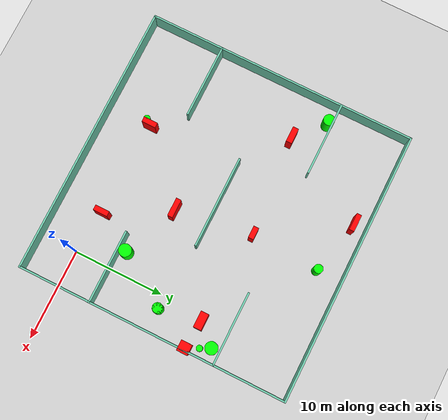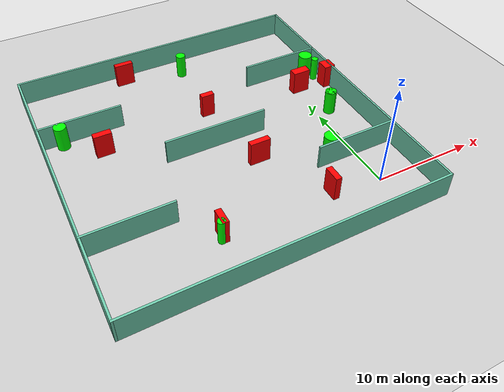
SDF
<sdf version="1.7">
 <world name="default">
  <light name="sun" type="directional">
   <pose>0 0 10 0 -0 0</pose>
   <diffuse>0.8 0.8 0.8 1</diffuse>
   <specular>0.2 0.2 0.2 1</specular>
   <attenuation>
    <range>1000</range>
    <constant>0.9</constant>
    <linear>0.01</linear>
    <quadratic>0.001</quadratic>
   </attenuation>
   <direction>-0.5 0.1 -0.9</direction>
   <spot><inner_angle>0</inner_angle><outer_angle>0</outer_angle><falloff>0</falloff></spot>
  </light>
  <model name="ground_plane">
   <static>1</static>
   <link name="link">
    <collision name="collision">
     <geometry><plane><normal>0 0 1</normal><size>100 100</size></plane></geometry>
     <surface>
      <contact><collide_bitmask>65535</collide_bitmask></contact>
      <friction><ode><mu>100</mu><mu2>50</mu2></ode></friction>
     </surface>
    </collision>
    <visual name="visual">
     <cast_shadows>0</cast_shadows>
     <geometry><plane><normal>0 0 1</normal><size>100 100</size></plane></geometry>
     <material>
      <script><uri>file://media/materials/scripts/gazebo.material</uri><name>Gazebo/Grey</name></script>
     </material>
    </visual>
   </link>
  </model>
  <gravity>0 0 -9.8</gravity>
  <magnetic_field>6e-06 2.3e-05 -4.2e-05</magnetic_field>
  <atmosphere type="adiabatic"/>
  <physics type="ode">
   <max_step_size>0.001</max_step_size>
   <real_time_factor>1</real_time_factor>
   <real_time_update_rate>1000</real_time_update_rate>
  </physics>
  <scene><ambient>0.4 0.4 0.4 1</ambient><background>0.7 0.7 0.7 1</background><shadows>1</shadows></scene>
  <spherical_coordinates>
   <surface_model>EARTH_WGS84</surface_model>
   <latitude_deg>0</latitude_deg>
   <longitude_deg>0</longitude_deg>
   <elevation>0</elevation>
   <heading_deg>0</heading_deg>
  </spherical_coordinates>
  <model name="my_base_walls">
   <link name="Wall_10">
    <collision name="Wall_10_Collision">
     <geometry><box><size>8.2 0.2 2.5</size></box></geometry>
     <pose>0 0 1.25 0 -0 0</pose>
    </collision>
    <visual name="Wall_10_Visual">
     <pose>0 0 1.25 0 -0 0</pose>
     <geometry><box><size>8.2 0.2 2.5</size></box></geometry>
     <material>
      <script><uri>file://media/materials/scripts/gazebo.material</uri><name>Gazebo/Grey</name></script>
      <ambient>0.435294 0.796078 0.67451 1</ambient>
     </material>
     <meta><layer>0</layer></meta>
    </visual>
    <pose>-11 -7 0 0 -0 0</pose>
   </link>
   <link name="Wall_12">
    <collision name="Wall_12_Collision">
     <geometry><box><size>8.2 0.2 2.5</size></box></geometry>
     <pose>0 0 1.25 0 -0 0</pose>
    </collision>
    <visual name="Wall_12_Visual">
     <pose>0 0 1.25 0 -0 0</pose>
     <geometry><box><size>8.2 0.2 2.5</size></box></geometry>
     <material>
      <script><uri>file://media/materials/scripts/gazebo.material</uri><name>Gazebo/Grey</name></script>
      <ambient>0.435294 0.796078 0.67451 1</ambient>
     </material>
     <meta><layer>0</layer></meta>
    </visual>
    <pose>-11 7 0 0 -0 0</pose>
   </link>
   <link name="Wall_14">
    <collision name="Wall_14_Collision">
     <geometry><box><size>8.2 0.2 2.5</size></box></geometry>
     <pose>0 0 1.25 0 -0 0</pose>
    </collision>
    <visual name="Wall_14_Visual">
     <pose>0 0 1.25 0 -0 0</pose>
     <geometry><box><size>8.2 0.2 2.5</size></box></geometry>
     <material>
      <script><uri>file://media/materials/scripts/gazebo.material</uri><name>Gazebo/Grey</name></script>
      <ambient>0.435294 0.796078 0.67451 1</ambient>
     </material>
     <meta><layer>0</layer></meta>
    </visual>
    <pose>11 7 0 0 -0 3.14159</pose>
   </link>
   <link name="Wall_16">
    <collision name="Wall_16_Collision">
     <geometry><box><size>10.2 0.2 2.5</size></box></geometry>
     <pose>0 0 1.25 0 -0 0</pose>
    </collision>
    <visual name="Wall_16_Visual">
     <pose>0 0 1.25 0 -0 0</pose>
     <geometry><box><size>10.2 0.2 2.5</size></box></geometry>
     <material>
      <script><uri>file://media/materials/scripts/gazebo.material</uri><name>Gazebo/Grey</name></script>
      <ambient>0.435294 0.796078 0.67451 1</ambient>
     </material>
     <meta><layer>0</layer></meta>
    </visual>
    <pose>0 0 0 0 -0 3.14159</pose>
   </link>
   <link name="Wall_2">
    <collision name="Wall_2_Collision">
     <geometry><box><size>30.2 0.2 2.5</size></box></geometry>
     <pose>0 0 1.25 0 -0 0</pose>
    </collision>
    <visual name="Wall_2_Visual">
     <pose>0 0 1.25 0 -0 0</pose>
     <geometry><box><size>30.2 0.2 2.5</size></box></geometry>
     <material>
      <script><uri>file://media/materials/scripts/gazebo.material</uri><name>Gazebo/Grey</name></script>
      <ambient>0.435294 0.796078 0.67451 1</ambient>
     </material>
     <meta><layer>0</layer></meta>
    </visual>
    <pose>0 -15 0 0 -0 3.14159</pose>
   </link>
   <link name="Wall_3">
    <collision name="Wall_3_Collision">
     <geometry><box><size>30.2 0.2 2.5</size></box></geometry>
     <pose>0 0 1.25 0 -0 0</pose>
    </collision>
    <visual name="Wall_3_Visual">
     <pose>0 0 1.25 0 -0 0</pose>
     <geometry><box><size>30.2 0.2 2.5</size></box></geometry>
     <material>
      <script><uri>file://media/materials/scripts/gazebo.material</uri><name>Gazebo/Grey</name></script>
      <ambient>0.435294 0.796078 0.67451 1</ambient>
     </material>
     <meta><layer>0</layer></meta>
    </visual>
    <pose>-15 0 0 0 -0 1.5708</pose>
   </link>
   <link name="Wall_4">
    <collision name="Wall_4_Collision">
     <geometry><box><size>30.2 0.2 2.5</size></box></geometry>
     <pose>0 0 1.25 0 -0 0</pose>
    </collision>
    <visual name="Wall_4_Visual">
     <pose>0 0 1.25 0 -0 0</pose>
     <geometry><box><size>30.2 0.2 2.5</size></box></geometry>
     <material>
      <script><uri>file://media/materials/scripts/gazebo.material</uri><name>Gazebo/Grey</name></script>
      <ambient>0.435294 0.796078 0.67451 1</ambient>
     </material>
     <meta><layer>0</layer></meta>
    </visual>
    <pose>0 15 0 0 -0 0</pose>
   </link>
   <link name="Wall_6">
    <collision name="Wall_6_Collision">
     <geometry><box><size>30.2 0.2 2.5</size></box></geometry>
     <pose>0 0 1.25 0 -0 0</pose>
    </collision>
    <visual name="Wall_6_Visual">
     <pose>0 0 1.25 0 -0 0</pose>
     <geometry><box><size>30.2 0.2 2.5</size></box></geometry>
     <material>
      <script><uri>file://media/materials/scripts/gazebo.material</uri><name>Gazebo/Grey</name></script>
      <ambient>0.435294 0.796078 0.67451 1</ambient>
     </material>
     <meta><layer>0</layer></meta>
    </visual>
    <pose>15 0 0 0 -0 1.5708</pose>
   </link>
   <link name="Wall_8">
    <collision name="Wall_8_Collision">
     <geometry><box><size>8.2 0.2 2.5</size></box></geometry>
     <pose>0 0 1.25 0 -0 0</pose>
    </collision>
    <visual name="Wall_8_Visual">
     <pose>0 0 1.25 0 -0 0</pose>
     <geometry><box><size>8.2 0.2 2.5</size></box></geometry>
     <material>
      <script><uri>file://media/materials/scripts/gazebo.material</uri><name>Gazebo/Grey</name></script>
      <ambient>0.435294 0.796078 0.67451 1</ambient>
     </material>
     <meta><layer>0</layer></meta>
    </visual>
    <pose>11 -7 0 0 -0 3.14159</pose>
   </link>
   <static>1</static>
   <pose>-11 11 0 0 -0 0</pose>
  </model>
  <model name="cylinder1">
   <static>1</static>
   <link name="link">
    <inertial>
     <mass>1</mass>
     <inertia><ixx>0.5</ixx><ixy>0</ixy><ixz>0</ixz><iyy>0.5</iyy><iyz>0</iyz><izz>1</izz></inertia>
    </inertial>
    <collision name="collision">
     <geometry><cylinder><radius>0.5557350408338877</radius><length>2.5</length></cylinder></geometry>
    </collision>
    <visual name="visual">
     <geometry><cylinder><radius>0.5557350408338877</radius><length>2.5</length></cylinder></geometry>
     <material>
      <ambient>0 1 0 1</ambient>
      <diffuse>0 1 0 1</diffuse>
      <specular>0.1 0.1 0.1 1</specular>
      <emissive>0 0 0 0</emissive>
     </material>
    </visual>
   </link>
   <pose>1.4200103140553963 10.435890360317323 1.25 0 0 0</pose>
  </model>
  <model name="cylinder2">
   <static>1</static>
   <link name="link">
    <inertial>
     <mass>1</mass>
     <inertia><ixx>0.5</ixx><ixy>0</ixy><ixz>0</ixz><iyy>0.5</iyy><iyz>0</iyz><izz>1</izz></inertia>
    </inertial>
    <collision name="collision">
     <geometry><cylinder><radius>0.6958995383054397</radius><length>2.5</length></cylinder></geometry>
    </collision>
    <visual name="visual">
     <geometry><cylinder><radius>0.6958995383054397</radius><length>2.5</length></cylinder></geometry>
     <material>
      <ambient>0 1 0 1</ambient>
      <diffuse>0 1 0 1</diffuse>
      <specular>0.1 0.1 0.1 1</specular>
      <emissive>0 0 0 0</emissive>
     </material>
    </visual>
   </link>
   <pose>2.5647795552149226 17.102923685264347 1.25 0 0 0</pose>
  </model>
  <model name="cylinder3">
   <static>1</static>
   <link name="link">
    <inertial>
     <mass>1</mass>
     <inertia><ixx>0.5</ixx><ixy>0</ixy><ixz>0</ixz><iyy>0.5</iyy><iyz>0</iyz><izz>1</izz></inertia>
    </inertial>
    <collision name="collision">
     <geometry><cylinder><radius>0.34258990772392683</radius><length>2.5</length></cylinder></geometry>
    </collision>
    <visual name="visual">
     <geometry><cylinder><radius>0.34258990772392683</radius><length>2.5</length></cylinder></geometry>
     <material>
      <ambient>0 1 0 1</ambient>
      <diffuse>0 1 0 1</diffuse>
      <specular>0.1 0.1 0.1 1</specular>
      <emissive>0 0 0 0</emissive>
     </material>
    </visual>
   </link>
   <pose>3.1107429202470875 16.02961023441516 1.25 0 0 0</pose>
  </model>
  <model name="cylinder4">
   <static>1</static>
   <link name="link">
    <inertial>
     <mass>1</mass>
     <inertia><ixx>0.5</ixx><ixy>0</ixy><ixz>0</ixz><iyy>0.5</iyy><iyz>0</iyz><izz>1</izz></inertia>
    </inertial>
    <collision name="collision">
     <geometry><cylinder><radius>0.35853674170237637</radius><length>2.5</length></cylinder></geometry>
    </collision>
    <visual name="visual">
     <geometry><cylinder><radius>0.35853674170237637</radius><length>2.5</length></cylinder></geometry>
     <material>
      <ambient>0 1 0 1</ambient>
      <diffuse>0 1 0 1</diffuse>
      <specular>0.1 0.1 0.1 1</specular>
      <emissive>0 0 0 0</emissive>
     </material>
    </visual>
   </link>
   <pose>-15.609333681445351 0.4020374709164707 1.25 0 0 0</pose>
  </model>
  <model name="cylinder5">
   <static>1</static>
   <link name="link">
    <inertial>
     <mass>1</mass>
     <inertia><ixx>0.5</ixx><ixy>0</ixy><ixz>0</ixz><iyy>0.5</iyy><iyz>0</iyz><izz>1</izz></inertia>
    </inertial>
    <collision name="collision">
     <geometry><cylinder><radius>0.48634277351430066</radius><length>2.5</length></cylinder></geometry>
    </collision>
    <visual name="visual">
     <geometry><cylinder><radius>0.48634277351430066</radius><length>2.5</length></cylinder></geometry>
     <material>
      <ambient>0 1 0 1</ambient>
      <diffuse>0 1 0 1</diffuse>
      <specular>0.1 0.1 0.1 1</specular>
      <emissive>0 0 0 0</emissive>
     </material>
    </visual>
   </link>
   <pose>-9.423597022613103 23.244316449177806 1.25 0 0 0</pose>
  </model>
  <model name="cylinder6">
   <static>1</static>
   <link name="link">
    <inertial>
     <mass>1</mass>
     <inertia><ixx>0.5</ixx><ixy>0</ixy><ixz>0</ixz><iyy>0.5</iyy><iyz>0</iyz><izz>1</izz></inertia>
    </inertial>
    <collision name="collision">
     <geometry><cylinder><radius>0.610077006276796</radius><length>2.5</length></cylinder></geometry>
    </collision>
    <visual name="visual">
     <geometry><cylinder><radius>0.610077006276796</radius><length>2.5</length></cylinder></geometry>
     <material>
      <ambient>0 1 0 1</ambient>
      <diffuse>0 1 0 1</diffuse>
      <specular>0.1 0.1 0.1 1</specular>
      <emissive>0 0 0 0</emissive>
     </material>
    </visual>
   </link>
   <pose>-24.002255954840273 17.515594844428005 1.25 0 0 0</pose>
  </model>
  <model name="cylinder7">
   <static>1</static>
   <link name="link">
    <inertial>
     <mass>1</mass>
     <inertia><ixx>0.5</ixx><ixy>0</ixy><ixz>0</ixz><iyy>0.5</iyy><iyz>0</iyz><izz>1</izz></inertia>
    </inertial>
    <collision name="collision">
     <geometry><cylinder><radius>0.5190464480565334</radius><length>2.5</length></cylinder></geometry>
    </collision>
    <visual name="visual">
     <geometry><cylinder><radius>0.5190464480565334</radius><length>2.5</length></cylinder></geometry>
     <material>
      <ambient>0 1 0 1</ambient>
      <diffuse>0 1 0 1</diffuse>
      <specular>0.1 0.1 0.1 1</specular>
      <emissive>0 0 0 0</emissive>
     </material>
    </visual>
   </link>
   <pose>1.493291448484566 10.42672531775889 1.25 0 0 0</pose>
  </model>
  <model name="cylinder8">
   <static>1</static>
   <link name="link">
    <inertial>
     <mass>1</mass>
     <inertia><ixx>0.5</ixx><ixy>0</ixy><ixz>0</ixz><iyy>0.5</iyy><iyz>0</iyz><izz>1</izz></inertia>
    </inertial>
    <collision name="collision">
     <geometry><cylinder><radius>0.6990519343869346</radius><length>2.5</length></cylinder></geometry>
    </collision>
    <visual name="visual">
     <geometry><cylinder><radius>0.6990519343869346</radius><length>2.5</length></cylinder></geometry>
     <material>
      <ambient>0 1 0 1</ambient>
      <diffuse>0 1 0 1</diffuse>
      <specular>0.1 0.1 0.1 1</specular>
      <emissive>0 0 0 0</emissive>
     </material>
    </visual>
   </link>
   <pose>-2.284853163428682 4.812786543202604 1.25 0 0 0</pose>
  </model>
  <model name="box1">
   <static>1</static>
   <link name="link">
    <inertial>
     <mass>1</mass>
     <inertia><ixx>0.083</ixx><ixy>0</ixy><ixz>0</ixz><iyy>0.083</iyy><iyz>0</iyz><izz>0.083</izz></inertia>
    </inertial>
    <collision name="collision">
     <geometry><box><size>2.0185422227915852 0.5677051155712713 2.5</size></box></geometry>
    </collision>
    <visual name="visual">
     <geometry><box><size>2.0185422227915852 0.5677051155712713 2.5</size></box></geometry>
     <material>
      <ambient>1 0 0 1</ambient>
      <diffuse>1 0 0 1</diffuse>
      <specular>0.1 0.1 0.1 1</specular>
      <emissive>0 0 0 0</emissive>
     </material>
    </visual>
    <sensor name="my_contact" type="contact">
     <contact><collision>box_collision</collision><topic>__default_topic__</topic></contact>
    </sensor>
   </link>
   <pose>-8.448079217330744 7.2944681966204605 1.25 0 0 0</pose>
  </model>
  <model name="box2">
   <static>1</static>
   <link name="link">
    <inertial>
     <mass>1</mass>
     <inertia><ixx>0.083</ixx><ixy>0</ixy><ixz>0</ixz><iyy>0.083</iyy><iyz>0</iyz><izz>0.083</izz></inertia>
    </inertial>
    <collision name="collision">
     <geometry><box><size>1.172146536693 1.2447370813859169 2.5</size></box></geometry>
    </collision>
    <visual name="visual">
     <geometry><box><size>1.172146536693 1.2447370813859169 2.5</size></box></geometry>
     <material>
      <ambient>1 0 0 1</ambient>
      <diffuse>1 0 0 1</diffuse>
      <specular>0.1 0.1 0.1 1</specular>
      <emissive>0 0 0 0</emissive>
     </material>
    </visual>
    <sensor name="my_contact" type="contact">
     <contact><collision>box_collision</collision><topic>__default_topic__</topic></contact>
    </sensor>
   </link>
   <pose>3.732210130196261 14.655679255117818 1.25 0 0 0</pose>
  </model>
  <model name="box3">
   <static>1</static>
   <link name="link">
    <inertial>
     <mass>1</mass>
     <inertia><ixx>0.083</ixx><ixy>0</ixy><ixz>0</ixz><iyy>0.083</iyy><iyz>0</iyz><izz>0.083</izz></inertia>
    </inertial>
    <collision name="collision">
     <geometry><box><size>0.573211473868871 1.5903060937741706 2.5</size></box></geometry>
    </collision>
    <visual name="visual">
     <geometry><box><size>0.573211473868871 1.5903060937741706 2.5</size></box></geometry>
     <material>
      <ambient>1 0 0 1</ambient>
      <diffuse>1 0 0 1</diffuse>
      <specular>0.1 0.1 0.1 1</specular>
      <emissive>0 0 0 0</emissive>
     </material>
    </visual>
    <sensor name="my_contact" type="contact">
     <contact><collision>box_collision</collision><topic>__default_topic__</topic></contact>
    </sensor>
   </link>
   <pose>-4.809115922185205 0.7191835154600112 1.25 0 0 0</pose>
  </model>
  <model name="box4">
   <static>1</static>
   <link name="link">
    <inertial>
     <mass>1</mass>
     <inertia><ixx>0.083</ixx><ixy>0</ixy><ixz>0</ixz><iyy>0.083</iyy><iyz>0</iyz><izz>0.083</izz></inertia>
    </inertial>
    <collision name="collision">
     <geometry><box><size>1.7167079985693454 0.6463572007277227 2.5</size></box></geometry>
    </collision>
    <visual name="visual">
     <geometry><box><size>1.7167079985693454 0.6463572007277227 2.5</size></box></geometry>
     <material>
      <ambient>1 0 0 1</ambient>
      <diffuse>1 0 0 1</diffuse>
      <specular>0.1 0.1 0.1 1</specular>
      <emissive>0 0 0 0</emissive>
     </material>
    </visual>
    <sensor name="my_contact" type="contact">
     <contact><collision>box_collision</collision><topic>__default_topic__</topic></contact>
    </sensor>
   </link>
   <pose>-20.80729001586759 14.785004270598996 1.25 0 0 0</pose>
  </model>
  <model name="box5">
   <static>1</static>
   <link name="link">
    <inertial>
     <mass>1</mass>
     <inertia><ixx>0.083</ixx><ixy>0</ixy><ixz>0</ixz><iyy>0.083</iyy><iyz>0</iyz><izz>0.083</izz></inertia>
    </inertial>
    <collision name="collision">
     <geometry><box><size>0.574486668857085 1.5612377571859621 2.5</size></box></geometry>
    </collision>
    <visual name="visual">
     <geometry><box><size>0.574486668857085 1.5612377571859621 2.5</size></box></geometry>
     <material>
      <ambient>1 0 0 1</ambient>
      <diffuse>1 0 0 1</diffuse>
      <specular>0.1 0.1 0.1 1</specular>
      <emissive>0 0 0 0</emissive>
     </material>
    </visual>
    <sensor name="my_contact" type="contact">
     <contact><collision>box_collision</collision><topic>__default_topic__</topic></contact>
    </sensor>
   </link>
   <pose>-15.360192156340538 0.8583474907810849 1.25 0 0 0</pose>
  </model>
  <model name="box6">
   <static>1</static>
   <link name="link">
    <inertial>
     <mass>1</mass>
     <inertia><ixx>0.083</ixx><ixy>0</ixy><ixz>0</ixz><iyy>0.083</iyy><iyz>0</iyz><izz>0.083</izz></inertia>
    </inertial>
    <collision name="collision">
     <geometry><box><size>1.808162085260763 0.880853286305334 2.5</size></box></geometry>
    </collision>
    <visual name="visual">
     <geometry><box><size>1.808162085260763 0.880853286305334 2.5</size></box></geometry>
     <material>
      <ambient>1 0 0 1</ambient>
      <diffuse>1 0 0 1</diffuse>
      <specular>0.1 0.1 0.1 1</specular>
      <emissive>0 0 0 0</emissive>
     </material>
    </visual>
    <sensor name="my_contact" type="contact">
     <contact><collision>box_collision</collision><topic>__default_topic__</topic></contact>
    </sensor>
   </link>
   <pose>0.5885179970831977 14.949693678880536 1.25 0 0 0</pose>
  </model>
  <model name="box7">
   <static>1</static>
   <link name="link">
    <inertial>
     <mass>1</mass>
     <inertia><ixx>0.083</ixx><ixy>0</ixy><ixz>0</ixz><iyy>0.083</iyy><iyz>0</iyz><izz>0.083</izz></inertia>
    </inertial>
    <collision name="collision">
     <geometry><box><size>1.3027928947234024 0.579442053938057 2.5</size></box></geometry>
    </collision>
    <visual name="visual">
     <geometry><box><size>1.3027928947234024 0.579442053938057 2.5</size></box></geometry>
     <material>
      <ambient>1 0 0 1</ambient>
      <diffuse>1 0 0 1</diffuse>
      <specular>0.1 0.1 0.1 1</specular>
      <emissive>0 0 0 0</emissive>
     </material>
    </visual>
    <sensor name="my_contact" type="contact">
     <contact><collision>box_collision</collision><topic>__default_topic__</topic></contact>
    </sensor>
   </link>
   <pose>-9.774483496075561 15.721187627311618 1.25 0 0 0</pose>
  </model>
  <model name="box8">
   <static>1</static>
   <link name="link">
    <inertial>
     <mass>1</mass>
     <inertia><ixx>0.083</ixx><ixy>0</ixy><ixz>0</ixz><iyy>0.083</iyy><iyz>0</iyz><izz>0.083</izz></inertia>
    </inertial>
    <collision name="collision">
     <geometry><box><size>1.871770370323646 0.5402896834211253 2.5</size></box></geometry>
    </collision>
    <visual name="visual">
     <geometry><box><size>1.871770370323646 0.5402896834211253 2.5</size></box></geometry>
     <material>
      <ambient>1 0 0 1</ambient>
      <diffuse>1 0 0 1</diffuse>
      <specular>0.1 0.1 0.1 1</specular>
      <emissive>0 0 0 0</emissive>
     </material>
    </visual>
    <sensor name="my_contact" type="contact">
     <contact><collision>box_collision</collision><topic>__default_topic__</topic></contact>
    </sensor>
   </link>
   <pose>-15.41761235719874 24.59053667643861 1.25 0 0 0</pose>
  </model>
 </world>
</sdf>
